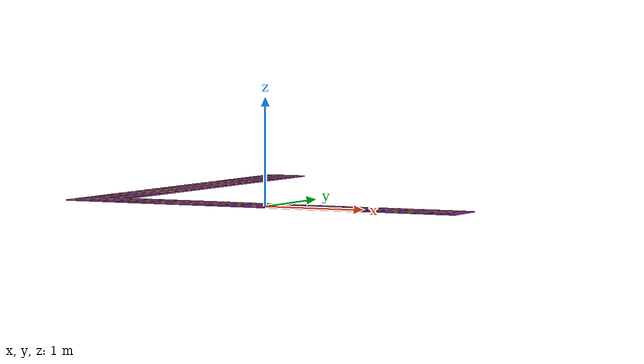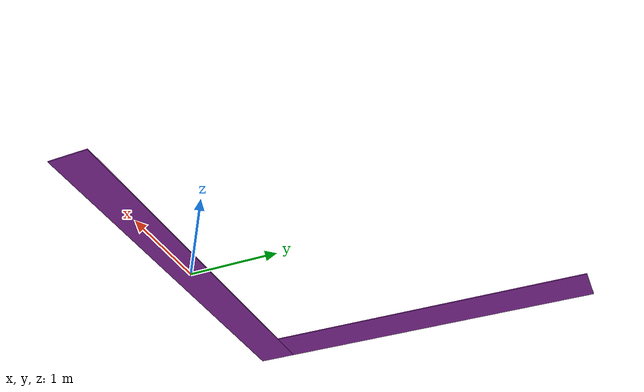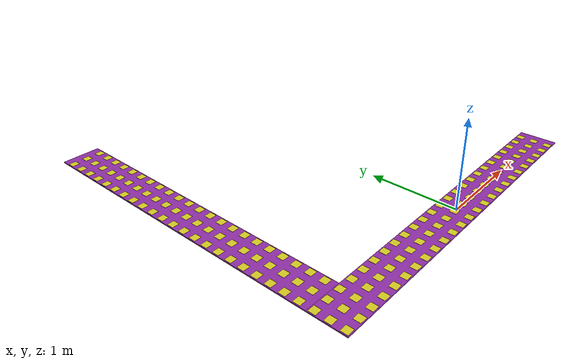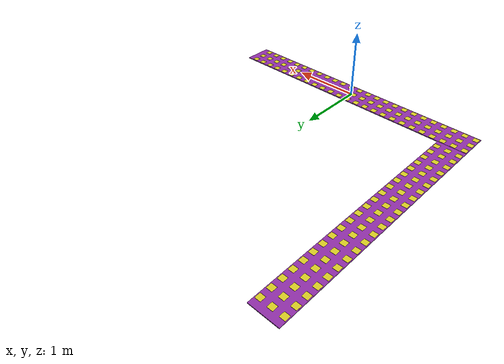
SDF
<?xml version="1.0" ?>
<sdf version="1.5">
  <model name="ugv_pattern">
  <static>true</static>

 <!-- Purple L -->
<link name="L">
		  <visual name="visual">
		  <pose>0 0 0.005 0 0 0</pose>
			  <geometry>
		    	<box>
		        <size>4.02 0.42 0.01</size>
		      </box>
		    </geometry>
        <material>
          <script>
            <uri>file://media/materials/scripts/gazebo.material</uri>
            <name>Gazebo/Purple</name>
          </script>
		    </material>
		  </visual>
      <visual name="visual_l">
        <pose>-1.8 2.01 0.005 0 0 0</pose>
			  <geometry>
		    	<box>
		        <size>0.42 3.60 0.01</size>
		      </box>
		    </geometry>
        <material>
          <script>
            <uri>file://media/materials/scripts/gazebo.material</uri>
            <name>Gazebo/Purple</name>
          </script>
		    </material>
		  </visual>
    </link>

    <!--Squares{-->
    <link name="Yellow squares">
      <visual name="visual">
        <pose> -1.80 0 0.001 1.5708 0 0 </pose>
        <geometry>
          <mesh>
            <uri>model://ugv_pattern/meshes/ugv_pattern.stl</uri>
          </mesh>
        </geometry>
        <material>
            <script>
              <uri>file://media/materials/scripts/gazebo.material</uri>
              <name>Gazebo/Yellow</name>
            </script>
        </material>
      </visual>
    </link>

  </model>
</sdf>
